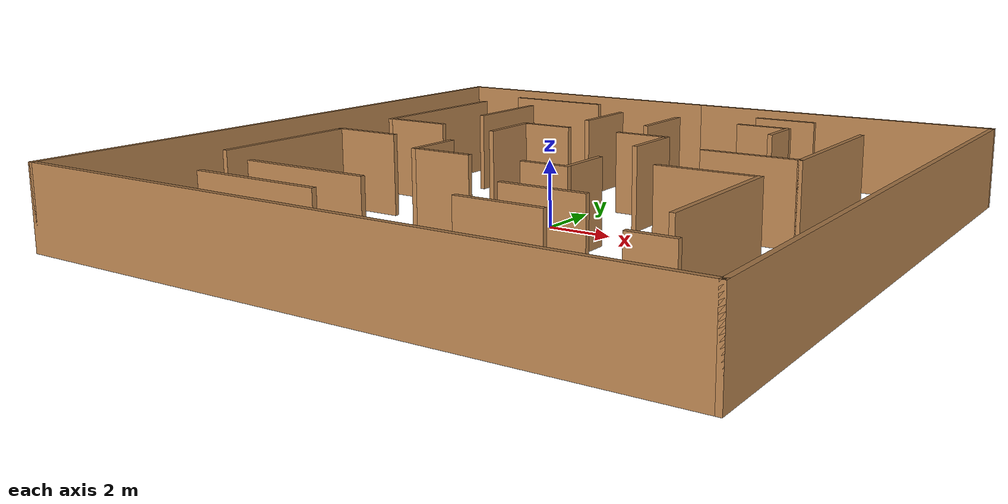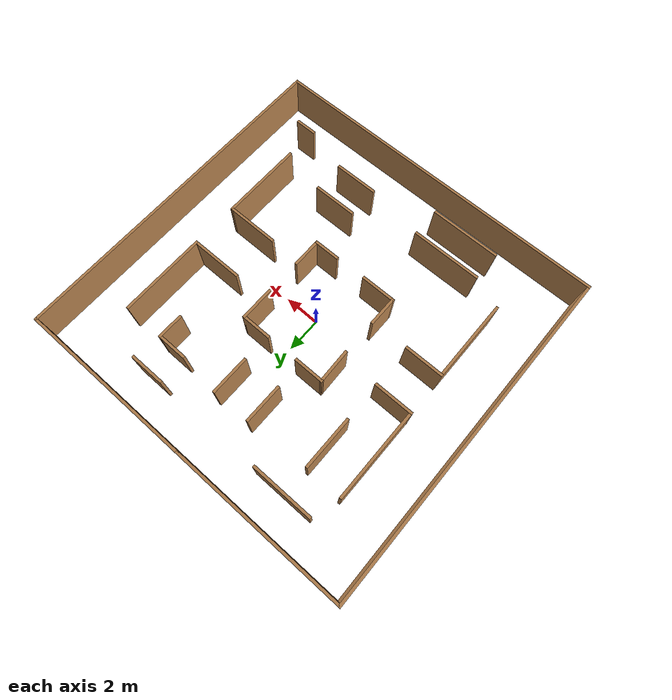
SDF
<?xml version='1.0'?>
<sdf version='1.7'>
  <model name='model7'>
    <pose>0.097393 -0.057747 0 0 -0 0</pose>
    <link name='Wall_13'>
      <collision name='Wall_13_Collision'>
        <geometry>
          <box>
            <size>10 0.15 2.5</size>
          </box>
        </geometry>
        <pose>0 0 1.25 0 -0 0</pose>
      </collision>
      <visual name='Wall_13_Visual'>
        <pose>0 0 1.25 0 -0 0</pose>
        <geometry>
          <box>
            <size>10 0.15 2.5</size>
          </box>
        </geometry>
        <material>
          <script>
            <uri>file://media/materials/scripts/gazebo.material</uri>
            <name>Gazebo/Wood</name>
          </script>
          <ambient>1 1 1 1</ambient>
        </material>
        <meta>
          <layer>0</layer>
        </meta>
      </visual>
      <pose>-5 9.8 0 0 -0 3.14159</pose>
    </link>
    <link name='Wall_14'>
      <collision name='Wall_14_Collision'>
        <geometry>
          <box>
            <size>19.75 0.15 2.5</size>
          </box>
        </geometry>
        <pose>0 0 1.25 0 -0 0</pose>
      </collision>
      <visual name='Wall_14_Visual'>
        <pose>0 0 1.25 0 -0 0</pose>
        <geometry>
          <box>
            <size>19.75 0.15 2.5</size>
          </box>
        </geometry>
        <material>
          <script>
            <uri>file://media/materials/scripts/gazebo.material</uri>
            <name>Gazebo/Wood</name>
          </script>
          <ambient>1 1 1 1</ambient>
        </material>
        <meta>
          <layer>0</layer>
        </meta>
      </visual>
      <pose>-9.925 0 0 0 -0 -1.5708</pose>
    </link>
    <link name='Wall_15'>
      <collision name='Wall_15_Collision'>
        <geometry>
          <box>
            <size>20 0.15 2.5</size>
          </box>
        </geometry>
        <pose>0 0 1.25 0 -0 0</pose>
      </collision>
      <visual name='Wall_15_Visual'>
        <pose>0 0 1.25 0 -0 0</pose>
        <geometry>
          <box>
            <size>20 0.15 2.5</size>
          </box>
        </geometry>
        <material>
          <script>
            <uri>file://media/materials/scripts/gazebo.material</uri>
            <name>Gazebo/Wood</name>
          </script>
          <ambient>1 1 1 1</ambient>
        </material>
        <meta>
          <layer>0</layer>
        </meta>
      </visual>
      <pose>-0 -9.8 0 0 -0 0</pose>
    </link>
    <link name='Wall_16'>
      <collision name='Wall_16_Collision'>
        <geometry>
          <box>
            <size>19.75 0.15 2.5</size>
          </box>
        </geometry>
        <pose>0 0 1.25 0 -0 0</pose>
      </collision>
      <visual name='Wall_16_Visual'>
        <pose>0 0 1.25 0 -0 0</pose>
        <geometry>
          <box>
            <size>19.75 0.15 2.5</size>
          </box>
        </geometry>
        <material>
          <script>
            <uri>file://media/materials/scripts/gazebo.material</uri>
            <name>Gazebo/Wood</name>
          </script>
          <ambient>1 1 1 1</ambient>
        </material>
        <meta>
          <layer>0</layer>
        </meta>
      </visual>
      <pose>9.925 0 0 0 -0 1.5708</pose>
    </link>
    <link name='Wall_17'>
      <collision name='Wall_17_Collision'>
        <geometry>
          <box>
            <size>10.15 0.15 2.5</size>
          </box>
        </geometry>
        <pose>0 0 1.25 0 -0 0</pose>
      </collision>
      <visual name='Wall_17_Visual'>
        <pose>0 0 1.25 0 -0 0</pose>
        <geometry>
          <box>
            <size>10.15 0.15 2.5</size>
          </box>
        </geometry>
        <material>
          <script>
            <uri>file://media/materials/scripts/gazebo.material</uri>
            <name>Gazebo/Wood</name>
          </script>
          <ambient>1 1 1 1</ambient>
        </material>
        <meta>
          <layer>0</layer>
        </meta>
      </visual>
      <pose>4.925 9.8 0 0 -0 3.14159</pose>
    </link>
    <link name='Wall_20'>
      <collision name='Wall_20_Collision'>
        <geometry>
          <box>
            <size>1.75 0.15 2.5</size>
          </box>
        </geometry>
        <pose>0 0 1.25 0 -0 0</pose>
      </collision>
      <visual name='Wall_20_Visual'>
        <pose>0 0 1.25 0 -0 0</pose>
        <geometry>
          <box>
            <size>1.75 0.15 2.5</size>
          </box>
        </geometry>
        <material>
          <script>
            <uri>file://media/materials/scripts/gazebo.material</uri>
            <name>Gazebo/Wood</name>
          </script>
          <ambient>1 1 1 1</ambient>
        </material>
        <meta>
          <layer>0</layer>
        </meta>
      </visual>
      <pose>-2.07463 2.84765 0 0 -0 0</pose>
    </link>
    <link name='Wall_22'>
      <collision name='Wall_22_Collision'>
        <geometry>
          <box>
            <size>1.75 0.15 2.5</size>
          </box>
        </geometry>
        <pose>0 0 1.25 0 -0 0</pose>
      </collision>
      <visual name='Wall_22_Visual'>
        <pose>0 0 1.25 0 -0 0</pose>
        <geometry>
          <box>
            <size>1.75 0.15 2.5</size>
          </box>
        </geometry>
        <material>
          <script>
            <uri>file://media/materials/scripts/gazebo.material</uri>
            <name>Gazebo/Wood</name>
          </script>
          <ambient>1 1 1 1</ambient>
        </material>
        <meta>
          <layer>0</layer>
        </meta>
      </visual>
      <pose>1.3834 2.87425 0 0 -0 0</pose>
    </link>
    <link name='Wall_23'>
      <collision name='Wall_23_Collision'>
        <geometry>
          <box>
            <size>2 0.15 2.5</size>
          </box>
        </geometry>
        <pose>0 0 1.25 0 -0 0</pose>
      </collision>
      <visual name='Wall_23_Visual'>
        <pose>0 0 1.25 0 -0 0</pose>
        <geometry>
          <box>
            <size>2 0.15 2.5</size>
          </box>
        </geometry>
        <material>
          <script>
            <uri>file://media/materials/scripts/gazebo.material</uri>
            <name>Gazebo/Wood</name>
          </script>
          <ambient>1 1 1 1</ambient>
        </material>
        <meta>
          <layer>0</layer>
        </meta>
      </visual>
      <pose>2.1834 1.94925 0 0 -0 -1.5708</pose>
    </link>
    <link name='Wall_26'>
      <collision name='Wall_26_Collision'>
        <geometry>
          <box>
            <size>1.75 0.15 2.5</size>
          </box>
        </geometry>
        <pose>0 0 1.25 0 -0 0</pose>
      </collision>
      <visual name='Wall_26_Visual'>
        <pose>0 0 1.25 0 -0 0</pose>
        <geometry>
          <box>
            <size>1.75 0.15 2.5</size>
          </box>
        </geometry>
        <material>
          <script>
            <uri>file://media/materials/scripts/gazebo.material</uri>
            <name>Gazebo/Wood</name>
          </script>
          <ambient>1 1 1 1</ambient>
        </material>
        <meta>
          <layer>0</layer>
        </meta>
      </visual>
      <pose>2.17941 -1.83597 0 0 -0 -1.5708</pose>
    </link>
    <link name='Wall_27'>
      <collision name='Wall_27_Collision'>
        <geometry>
          <box>
            <size>1.5 0.15 2.5</size>
          </box>
        </geometry>
        <pose>0 0 1.25 0 -0 0</pose>
      </collision>
      <visual name='Wall_27_Visual'>
        <pose>0 0 1.25 0 -0 0</pose>
        <geometry>
          <box>
            <size>1.5 0.15 2.5</size>
          </box>
        </geometry>
        <material>
          <script>
            <uri>file://media/materials/scripts/gazebo.material</uri>
            <name>Gazebo/Wood</name>
          </script>
          <ambient>1 1 1 1</ambient>
        </material>
        <meta>
          <layer>0</layer>
        </meta>
      </visual>
      <pose>1.50441 -2.63598 0 0 -0 3.14159</pose>
    </link>
    <link name='Wall_29'>
      <collision name='Wall_29_Collision'>
        <geometry>
          <box>
            <size>2 0.15 2.5</size>
          </box>
        </geometry>
        <pose>0 0 1.25 0 -0 0</pose>
      </collision>
      <visual name='Wall_29_Visual'>
        <pose>0 0 1.25 0 -0 0</pose>
        <geometry>
          <box>
            <size>2 0.15 2.5</size>
          </box>
        </geometry>
        <material>
          <script>
            <uri>file://media/materials/scripts/gazebo.material</uri>
            <name>Gazebo/Wood</name>
          </script>
          <ambient>1 1 1 1</ambient>
        </material>
        <meta>
          <layer>0</layer>
        </meta>
      </visual>
      <pose>-1.91102 -2.68519 0 0 -0 3.14159</pose>
    </link>
    <link name='Wall_31'>
      <collision name='Wall_31_Collision'>
        <geometry>
          <box>
            <size>1.75 0.15 2.5</size>
          </box>
        </geometry>
        <pose>0 0 1.25 0 -0 0</pose>
      </collision>
      <visual name='Wall_31_Visual'>
        <pose>0 0 1.25 0 -0 0</pose>
        <geometry>
          <box>
            <size>1.75 0.15 2.5</size>
          </box>
        </geometry>
        <material>
          <script>
            <uri>file://media/materials/scripts/gazebo.material</uri>
            <name>Gazebo/Wood</name>
          </script>
          <ambient>1 1 1 1</ambient>
        </material>
        <meta>
          <layer>0</layer>
        </meta>
      </visual>
      <pose>-2.83602 -1.88519 0 0 -0 1.5708</pose>
    </link>
    <link name='Wall_33'>
      <collision name='Wall_33_Collision'>
        <geometry>
          <box>
            <size>2.01277 0.15 2.5</size>
          </box>
        </geometry>
        <pose>0 0 1.25 0 -0 0</pose>
      </collision>
      <visual name='Wall_33_Visual'>
        <pose>0 0 1.25 0 -0 0</pose>
        <geometry>
          <box>
            <size>2.01277 0.15 2.5</size>
          </box>
        </geometry>
        <material>
          <script>
            <uri>file://media/materials/scripts/gazebo.material</uri>
            <name>Gazebo/Wood</name>
          </script>
          <ambient>1 1 1 1</ambient>
        </material>
        <meta>
          <layer>0</layer>
        </meta>
      </visual>
      <pose>-2.84803 1.91665 0 0 -0 1.59936</pose>
    </link>
    <link name='Wall_36'>
      <collision name='Wall_36_Collision'>
        <geometry>
          <box>
            <size>5.25 0.15 2.5</size>
          </box>
        </geometry>
        <pose>0 0 1.25 0 -0 0</pose>
      </collision>
      <visual name='Wall_36_Visual'>
        <pose>0 0 1.25 0 -0 0</pose>
        <geometry>
          <box>
            <size>5.25 0.15 2.5</size>
          </box>
        </geometry>
        <material>
          <script>
            <uri>file://media/materials/scripts/gazebo.material</uri>
            <name>Gazebo/Wood</name>
          </script>
          <ambient>1 1 1 1</ambient>
        </material>
        <meta>
          <layer>0</layer>
        </meta>
      </visual>
      <pose>-7.09184 3.80164 0 0 -0 1.5708</pose>
    </link>
    <link name='Wall_39'>
      <collision name='Wall_39_Collision'>
        <geometry>
          <box>
            <size>2.25 0.15 2.5</size>
          </box>
        </geometry>
        <pose>0 0 1.25 0 -0 0</pose>
      </collision>
      <visual name='Wall_39_Visual'>
        <pose>0 0 1.25 0 -0 0</pose>
        <geometry>
          <box>
            <size>2.25 0.15 2.5</size>
          </box>
        </geometry>
        <material>
          <script>
            <uri>file://media/materials/scripts/gazebo.material</uri>
            <name>Gazebo/Wood</name>
          </script>
          <ambient>1 1 1 1</ambient>
        </material>
        <meta>
          <layer>0</layer>
        </meta>
      </visual>
      <pose>-6.04184 1.25164 0 0 -0 0</pose>
    </link>
    <link name='Wall_41'>
      <collision name='Wall_41_Collision'>
        <geometry>
          <box>
            <size>2.25 0.15 2.5</size>
          </box>
        </geometry>
        <pose>0 0 1.25 0 -0 0</pose>
      </collision>
      <visual name='Wall_41_Visual'>
        <pose>0 0 1.25 0 -0 0</pose>
        <geometry>
          <box>
            <size>2.25 0.15 2.5</size>
          </box>
        </geometry>
        <material>
          <script>
            <uri>file://media/materials/scripts/gazebo.material</uri>
            <name>Gazebo/Wood</name>
          </script>
          <ambient>1 1 1 1</ambient>
        </material>
        <meta>
          <layer>0</layer>
        </meta>
      </visual>
      <pose>-5.99944 -1.16898 0 0 -0 3.14159</pose>
    </link>
    <link name='Wall_42'>
      <collision name='Wall_42_Collision'>
        <geometry>
          <box>
            <size>4.75 0.15 2.5</size>
          </box>
        </geometry>
        <pose>0 0 1.25 0 -0 0</pose>
      </collision>
      <visual name='Wall_42_Visual'>
        <pose>0 0 1.25 0 -0 0</pose>
        <geometry>
          <box>
            <size>4.75 0.15 2.5</size>
          </box>
        </geometry>
        <material>
          <script>
            <uri>file://media/materials/scripts/gazebo.material</uri>
            <name>Gazebo/Wood</name>
          </script>
          <ambient>1 1 1 1</ambient>
        </material>
        <meta>
          <layer>0</layer>
        </meta>
      </visual>
      <pose>-7.04945 -3.46898 0 0 -0 -1.5708</pose>
    </link>
    <link name='Wall_46'>
      <collision name='Wall_46_Collision'>
        <geometry>
          <box>
            <size>4 0.15 2.5</size>
          </box>
        </geometry>
        <pose>0 0 1.25 0 -0 0</pose>
      </collision>
      <visual name='Wall_46_Visual'>
        <pose>0 0 1.25 0 -0 0</pose>
        <geometry>
          <box>
            <size>4 0.15 2.5</size>
          </box>
        </geometry>
        <material>
          <script>
            <uri>file://media/materials/scripts/gazebo.material</uri>
            <name>Gazebo/Wood</name>
          </script>
          <ambient>1 1 1 1</ambient>
        </material>
        <meta>
          <layer>0</layer>
        </meta>
      </visual>
      <pose>-3.34365 -6.48902 0 0 -0 0</pose>
    </link>
    <link name='Wall_48'>
      <collision name='Wall_48_Collision'>
        <geometry>
          <box>
            <size>4 0.15 2.5</size>
          </box>
        </geometry>
        <pose>0 0 1.25 0 -0 0</pose>
      </collision>
      <visual name='Wall_48_Visual'>
        <pose>0 0 1.25 0 -0 0</pose>
        <geometry>
          <box>
            <size>4 0.15 2.5</size>
          </box>
        </geometry>
        <material>
          <script>
            <uri>file://media/materials/scripts/gazebo.material</uri>
            <name>Gazebo/Wood</name>
          </script>
          <ambient>1 1 1 1</ambient>
        </material>
        <meta>
          <layer>0</layer>
        </meta>
      </visual>
      <pose>-3.34365 -8.16483 0 0 -0 0</pose>
    </link>
    <link name='Wall_51'>
      <collision name='Wall_51_Collision'>
        <geometry>
          <box>
            <size>2.5 0.15 2.5</size>
          </box>
        </geometry>
        <pose>0 0 1.25 0 -0 0</pose>
      </collision>
      <visual name='Wall_51_Visual'>
        <pose>0 0 1.25 0 -0 0</pose>
        <geometry>
          <box>
            <size>2.5 0.15 2.5</size>
          </box>
        </geometry>
        <material>
          <script>
            <uri>file://media/materials/scripts/gazebo.material</uri>
            <name>Gazebo/Wood</name>
          </script>
          <ambient>1 1 1 1</ambient>
        </material>
        <meta>
          <layer>0</layer>
        </meta>
      </visual>
      <pose>3.11501 -5.18561 0 0 -0 0</pose>
    </link>
    <link name='Wall_53'>
      <collision name='Wall_53_Collision'>
        <geometry>
          <box>
            <size>2.5 0.15 2.5</size>
          </box>
        </geometry>
        <pose>0 0 1.25 0 -0 0</pose>
      </collision>
      <visual name='Wall_53_Visual'>
        <pose>0 0 1.25 0 -0 0</pose>
        <geometry>
          <box>
            <size>2.5 0.15 2.5</size>
          </box>
        </geometry>
        <material>
          <script>
            <uri>file://media/materials/scripts/gazebo.material</uri>
            <name>Gazebo/Wood</name>
          </script>
          <ambient>1 1 1 1</ambient>
        </material>
        <meta>
          <layer>0</layer>
        </meta>
      </visual>
      <pose>3.11501 -6.96782 0 0 -0 0</pose>
    </link>
    <link name='Wall_56'>
      <collision name='Wall_56_Collision'>
        <geometry>
          <box>
            <size>3 0.15 2.5</size>
          </box>
        </geometry>
        <pose>0 0 1.25 0 -0 0</pose>
      </collision>
      <visual name='Wall_56_Visual'>
        <pose>0 0 1.25 0 -0 0</pose>
        <geometry>
          <box>
            <size>3 0.15 2.5</size>
          </box>
        </geometry>
        <material>
          <script>
            <uri>file://media/materials/scripts/gazebo.material</uri>
            <name>Gazebo/Wood</name>
          </script>
          <ambient>1 1 1 1</ambient>
        </material>
        <meta>
          <layer>0</layer>
        </meta>
      </visual>
      <pose>5.46642 -1.19558 0 0 -0 0</pose>
    </link>
    <link name='Wall_57'>
      <collision name='Wall_57_Collision'>
        <geometry>
          <box>
            <size>4.75 0.15 2.5</size>
          </box>
        </geometry>
        <pose>0 0 1.25 0 -0 0</pose>
      </collision>
      <visual name='Wall_57_Visual'>
        <pose>0 0 1.25 0 -0 0</pose>
        <geometry>
          <box>
            <size>4.75 0.15 2.5</size>
          </box>
        </geometry>
        <material>
          <script>
            <uri>file://media/materials/scripts/gazebo.material</uri>
            <name>Gazebo/Wood</name>
          </script>
          <ambient>1 1 1 1</ambient>
        </material>
        <meta>
          <layer>0</layer>
        </meta>
      </visual>
      <pose>6.89142 -3.49558 0 0 -0 -1.5708</pose>
    </link>
    <link name='Wall_59'>
      <collision name='Wall_59_Collision'>
        <geometry>
          <box>
            <size>3 0.15 2.5</size>
          </box>
        </geometry>
        <pose>0 0 1.25 0 -0 0</pose>
      </collision>
      <visual name='Wall_59_Visual'>
        <pose>0 0 1.25 0 -0 0</pose>
        <geometry>
          <box>
            <size>3 0.15 2.5</size>
          </box>
        </geometry>
        <material>
          <script>
            <uri>file://media/materials/scripts/gazebo.material</uri>
            <name>Gazebo/Wood</name>
          </script>
          <ambient>1 1 1 1</ambient>
        </material>
        <meta>
          <layer>0</layer>
        </meta>
      </visual>
      <pose>5.49302 1.49104 0 0 -0 0</pose>
    </link>
    <link name='Wall_60'>
      <collision name='Wall_60_Collision'>
        <geometry>
          <box>
            <size>5 0.15 2.5</size>
          </box>
        </geometry>
        <pose>0 0 1.25 0 -0 0</pose>
      </collision>
      <visual name='Wall_60_Visual'>
        <pose>0 0 1.25 0 -0 0</pose>
        <geometry>
          <box>
            <size>5 0.15 2.5</size>
          </box>
        </geometry>
        <material>
          <script>
            <uri>file://media/materials/scripts/gazebo.material</uri>
            <name>Gazebo/Wood</name>
          </script>
          <ambient>1 1 1 1</ambient>
        </material>
        <meta>
          <layer>0</layer>
        </meta>
      </visual>
      <pose>6.91802 3.91604 0 0 -0 1.5708</pose>
    </link>
    <link name='Wall_62'>
      <collision name='Wall_62_Collision'>
        <geometry>
          <box>
            <size>1.5 0.15 2.5</size>
          </box>
        </geometry>
        <pose>0 0 1.25 0 -0 0</pose>
      </collision>
      <visual name='Wall_62_Visual'>
        <pose>0 0 1.25 0 -0 0</pose>
        <geometry>
          <box>
            <size>1.5 0.15 2.5</size>
          </box>
        </geometry>
        <material>
          <script>
            <uri>file://media/materials/scripts/gazebo.material</uri>
            <name>Gazebo/Wood</name>
          </script>
          <ambient>1 1 1 1</ambient>
        </material>
        <meta>
          <layer>0</layer>
        </meta>
      </visual>
      <pose>4.60003 5.67727 0 0 -0 1.5708</pose>
    </link>
    <link name='Wall_63'>
      <collision name='Wall_63_Collision'>
        <geometry>
          <box>
            <size>1.75 0.15 2.5</size>
          </box>
        </geometry>
        <pose>0 0 1.25 0 -0 0</pose>
      </collision>
      <visual name='Wall_63_Visual'>
        <pose>0 0 1.25 0 -0 0</pose>
        <geometry>
          <box>
            <size>1.75 0.15 2.5</size>
          </box>
        </geometry>
        <material>
          <script>
            <uri>file://media/materials/scripts/gazebo.material</uri>
            <name>Gazebo/Wood</name>
          </script>
          <ambient>1 1 1 1</ambient>
        </material>
        <meta>
          <layer>0</layer>
        </meta>
      </visual>
      <pose>3.80003 6.35227 0 0 -0 3.14159</pose>
    </link>
    <link name='Wall_65'>
      <collision name='Wall_65_Collision'>
        <geometry>
          <box>
            <size>2.25 0.15 2.5</size>
          </box>
        </geometry>
        <pose>0 0 1.25 0 -0 0</pose>
      </collision>
      <visual name='Wall_65_Visual'>
        <pose>0 0 1.25 0 -0 0</pose>
        <geometry>
          <box>
            <size>2.25 0.15 2.5</size>
          </box>
        </geometry>
        <material>
          <script>
            <uri>file://media/materials/scripts/gazebo.material</uri>
            <name>Gazebo/Wood</name>
          </script>
          <ambient>1 1 1 1</ambient>
        </material>
        <meta>
          <layer>0</layer>
        </meta>
      </visual>
      <pose>-1.51802 5.52027 0 0 -0 1.5708</pose>
    </link>
    <link name='Wall_67'>
      <collision name='Wall_67_Collision'>
        <geometry>
          <box>
            <size>2.25 0.15 2.5</size>
          </box>
        </geometry>
        <pose>0 0 1.25 0 -0 0</pose>
      </collision>
      <visual name='Wall_67_Visual'>
        <pose>0 0 1.25 0 -0 0</pose>
        <geometry>
          <box>
            <size>2.25 0.15 2.5</size>
          </box>
        </geometry>
        <material>
          <script>
            <uri>file://media/materials/scripts/gazebo.material</uri>
            <name>Gazebo/Wood</name>
          </script>
          <ambient>1 1 1 1</ambient>
        </material>
        <meta>
          <layer>0</layer>
        </meta>
      </visual>
      <pose>0.636596 5.54687 0 0 -0 1.5708</pose>
    </link>
    <link name='Wall_70'>
      <collision name='Wall_70_Collision'>
        <geometry>
          <box>
            <size>3.5 0.15 2.5</size>
          </box>
        </geometry>
        <pose>0 0 1.25 0 -0 0</pose>
      </collision>
      <visual name='Wall_70_Visual'>
        <pose>0 0 1.25 0 -0 0</pose>
        <geometry>
          <box>
            <size>3.5 0.15 2.5</size>
          </box>
        </geometry>
        <material>
          <script>
            <uri>file://media/materials/scripts/gazebo.material</uri>
            <name>Gazebo/Wood</name>
          </script>
          <ambient>1 1 1 1</ambient>
        </material>
        <meta>
          <layer>0</layer>
        </meta>
      </visual>
      <pose>-4.89706 7.92829 0 0 -0 0</pose>
    </link>
    <link name='Wall_72'>
      <collision name='Wall_72_Collision'>
        <geometry>
          <box>
            <size>2 0.15 2.5</size>
          </box>
        </geometry>
        <pose>0 0 1.25 0 -0 0</pose>
      </collision>
      <visual name='Wall_72_Visual'>
        <pose>0 0 1.25 0 -0 0</pose>
        <geometry>
          <box>
            <size>2 0.15 2.5</size>
          </box>
        </geometry>
        <material>
          <script>
            <uri>file://media/materials/scripts/gazebo.material</uri>
            <name>Gazebo/Wood</name>
          </script>
          <ambient>1 1 1 1</ambient>
        </material>
        <meta>
          <layer>0</layer>
        </meta>
      </visual>
      <pose>3.87581 7.95489 0 0 -0 0</pose>
    </link>
    <link name='Wall_75'>
      <collision name='Wall_75_Collision'>
        <geometry>
          <box>
            <size>3 0.15 2.5</size>
          </box>
        </geometry>
        <pose>0 0 1.25 0 -0 0</pose>
      </collision>
      <visual name='Wall_75_Visual'>
        <pose>0 0 1.25 0 -0 0</pose>
        <geometry>
          <box>
            <size>3 0.15 2.5</size>
          </box>
        </geometry>
        <material>
          <script>
            <uri>file://media/materials/scripts/gazebo.material</uri>
            <name>Gazebo/Wood</name>
          </script>
          <ambient>1 1 1 1</ambient>
        </material>
        <meta>
          <layer>0</layer>
        </meta>
      </visual>
      <pose>-5.02925 4.90728 0 0 -0 -1.5708</pose>
    </link>
    <link name='Wall_78'>
      <collision name='Wall_78_Collision'>
        <geometry>
          <box>
            <size>1.25 0.15 2.5</size>
          </box>
        </geometry>
        <pose>0 0 1.25 0 -0 0</pose>
      </collision>
      <visual name='Wall_78_Visual'>
        <pose>0 0 1.25 0 -0 0</pose>
        <geometry>
          <box>
            <size>1.25 0.15 2.5</size>
          </box>
        </geometry>
        <material>
          <script>
            <uri>file://media/materials/scripts/gazebo.material</uri>
            <name>Gazebo/Wood</name>
          </script>
          <ambient>1 1 1 1</ambient>
        </material>
        <meta>
          <layer>0</layer>
        </meta>
      </visual>
      <pose>7.41104 -7.73923 0 0 -0 0</pose>
    </link>
    <static>1</static>
  </model>
</sdf>
